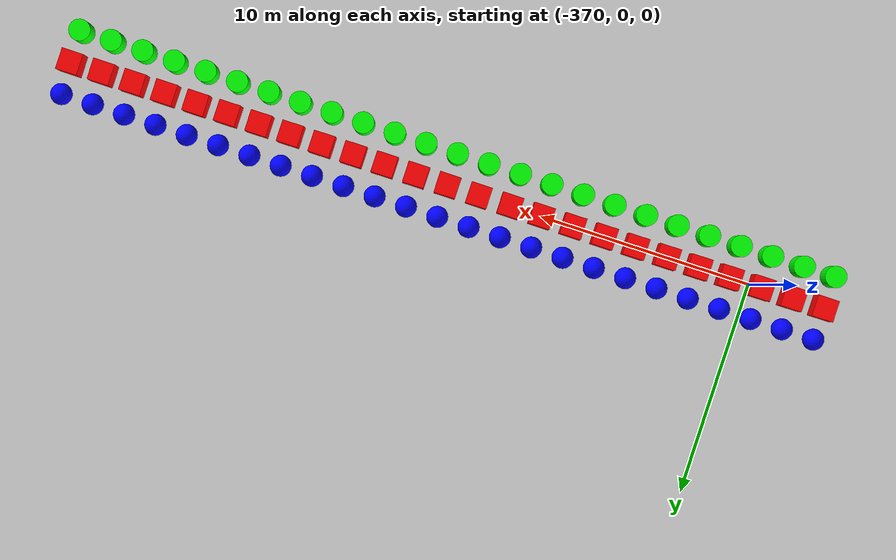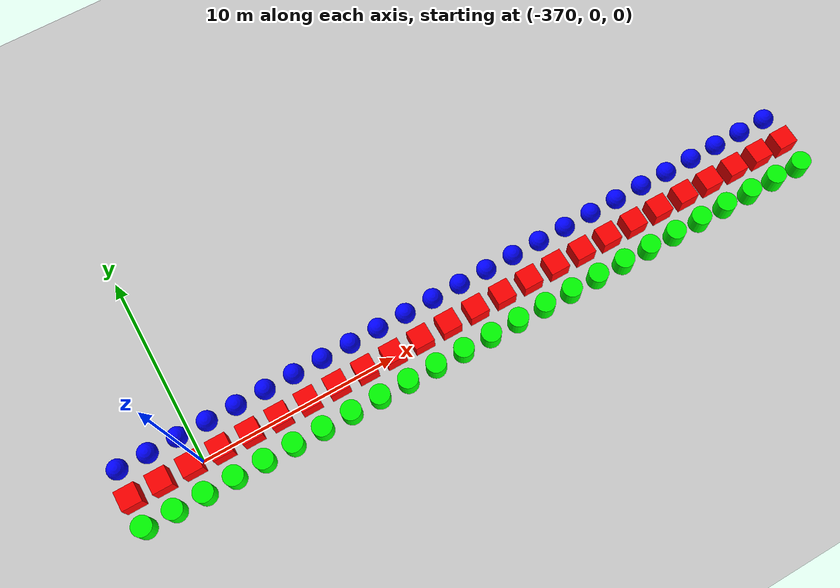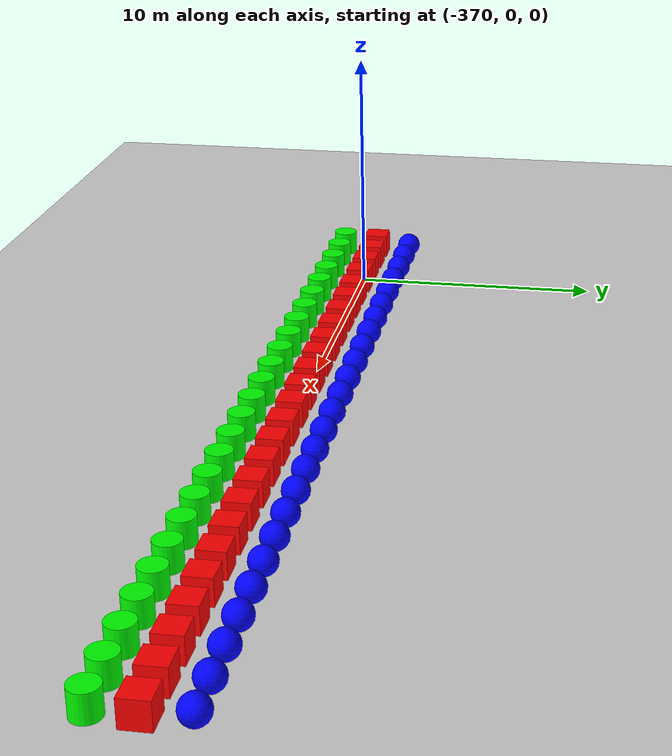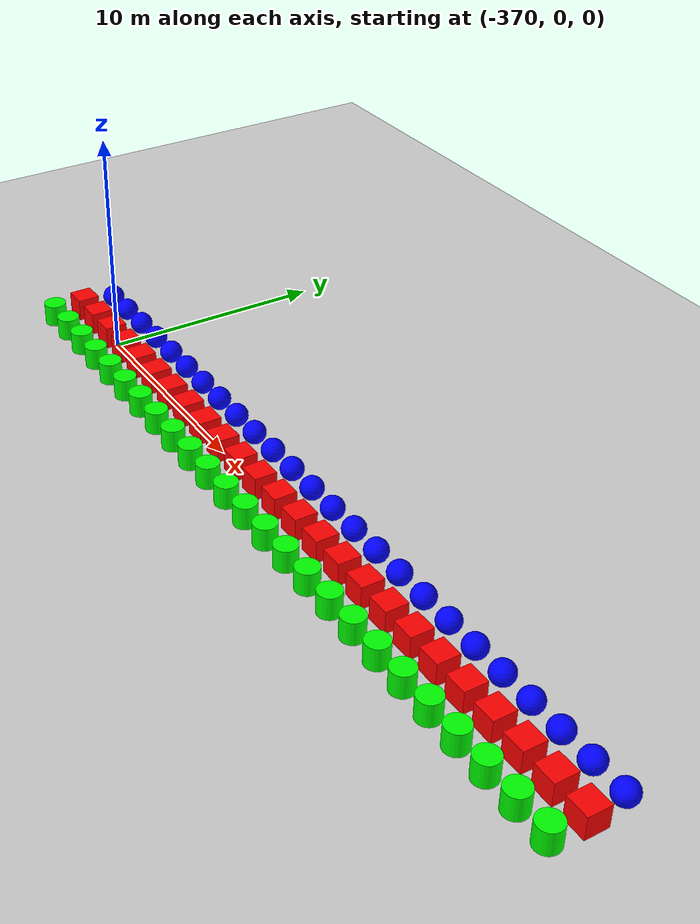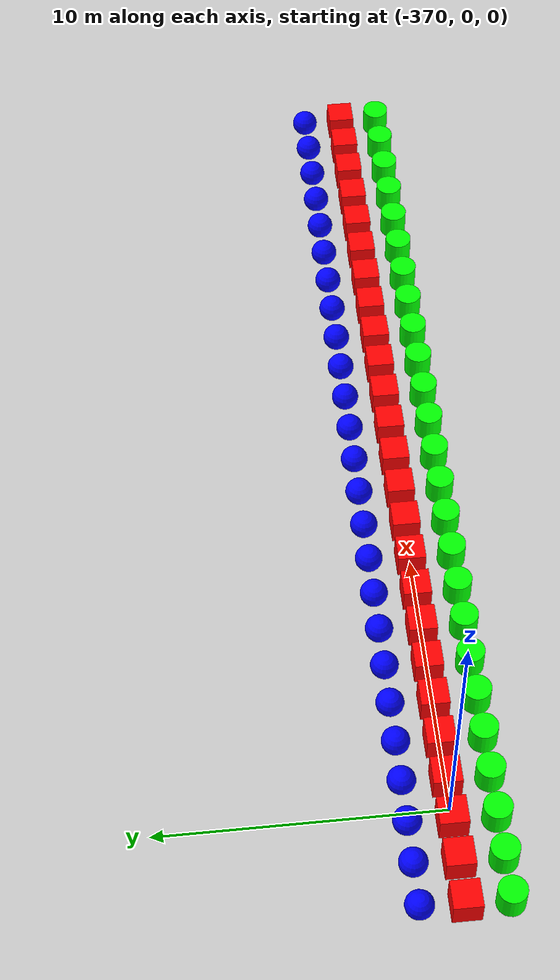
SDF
<sdf version="1.6">
 <world name="shapes">
  <model name="ground_plane">
   <static>true</static>
   <link name="link">
    <collision name="collision">
     <geometry><plane><normal>0 0 1</normal><size>100 100</size></plane></geometry>
    </collision>
    <visual name="visual">
     <geometry><plane><normal>0 0 1</normal><size>100 100</size></plane></geometry>
     <material>
      <ambient>0.8 0.8 0.8 1</ambient>
      <diffuse>0.8 0.8 0.8 1</diffuse>
      <specular>0.8 0.8 0.8 1</specular>
     </material>
    </visual>
   </link>
  </model>
  <model name="box_251">
   <static>false</static>
   <pose>-373.5 0 0.5 0 0 0</pose>
   <link name="box_link">
    <inertial>
     <inertia><ixx>1</ixx><ixy>0</ixy><ixz>0</ixz><iyy>1</iyy><iyz>0</iyz><izz>1</izz></inertia>
     <mass>1.0</mass>
    </inertial>
    <collision name="box_collision"><geometry><box><size>1 1 1</size></box></geometry></collision>
    <visual name="box_visual">
     <geometry><box><size>1 1 1</size></box></geometry>
     <material><ambient>1 0 0 1</ambient><diffuse>1 0 0 1</diffuse><specular>1 0 0 1</specular></material>
    </visual>
   </link>
  </model>
  <model name="cylinder_251">
   <static>false</static>
   <pose>-373.5 -1.5 0.5 0 0 0</pose>
   <link name="cylinder_link">
    <inertial>
     <inertia><ixx>2</ixx><ixy>0</ixy><ixz>0</ixz><iyy>2</iyy><iyz>0</iyz><izz>2</izz></inertia>
     <mass>2.0</mass>
    </inertial>
    <collision name="cylinder_collision">
     <geometry><cylinder><radius>0.5</radius><length>1.0</length></cylinder></geometry>
    </collision>
    <visual name="cylinder_visual">
     <geometry><cylinder><radius>0.5</radius><length>1.0</length></cylinder></geometry>
     <material><ambient>0 1 0 1</ambient><diffuse>0 1 0 1</diffuse><specular>0 1 0 1</specular></material>
    </visual>
   </link>
  </model>
  <model name="sphere_251">
   <static>false</static>
   <pose>-373.5 1.5 0.5 0 0 0</pose>
   <link name="sphere_link">
    <inertial>
     <inertia><ixx>3</ixx><ixy>0</ixy><ixz>0</ixz><iyy>3</iyy><iyz>0</iyz><izz>3</izz></inertia>
     <mass>3.0</mass>
    </inertial>
    <collision name="sphere_collision"><geometry><sphere><radius>0.5</radius></sphere></geometry></collision>
    <visual name="sphere_visual">
     <geometry><sphere><radius>0.5</radius></sphere></geometry>
     <material><ambient>0 0 1 1</ambient><diffuse>0 0 1 1</diffuse><specular>0 0 1 1</specular></material>
    </visual>
   </link>
  </model>
  <model name="box_252">
   <static>false</static>
   <pose>-372.0 0 0.5 0 0 0</pose>
   <link name="box_link">
    <inertial>
     <inertia><ixx>1</ixx><ixy>0</ixy><ixz>0</ixz><iyy>1</iyy><iyz>0</iyz><izz>1</izz></inertia>
     <mass>1.0</mass>
    </inertial>
    <collision name="box_collision"><geometry><box><size>1 1 1</size></box></geometry></collision>
    <visual name="box_visual">
     <geometry><box><size>1 1 1</size></box></geometry>
     <material><ambient>1 0 0 1</ambient><diffuse>1 0 0 1</diffuse><specular>1 0 0 1</specular></material>
    </visual>
   </link>
  </model>
  <model name="cylinder_252">
   <static>false</static>
   <pose>-372.0 -1.5 0.5 0 0 0</pose>
   <link name="cylinder_link">
    <inertial>
     <inertia><ixx>2</ixx><ixy>0</ixy><ixz>0</ixz><iyy>2</iyy><iyz>0</iyz><izz>2</izz></inertia>
     <mass>2.0</mass>
    </inertial>
    <collision name="cylinder_collision">
     <geometry><cylinder><radius>0.5</radius><length>1.0</length></cylinder></geometry>
    </collision>
    <visual name="cylinder_visual">
     <geometry><cylinder><radius>0.5</radius><length>1.0</length></cylinder></geometry>
     <material><ambient>0 1 0 1</ambient><diffuse>0 1 0 1</diffuse><specular>0 1 0 1</specular></material>
    </visual>
   </link>
  </model>
  <model name="sphere_252">
   <static>false</static>
   <pose>-372.0 1.5 0.5 0 0 0</pose>
   <link name="sphere_link">
    <inertial>
     <inertia><ixx>3</ixx><ixy>0</ixy><ixz>0</ixz><iyy>3</iyy><iyz>0</iyz><izz>3</izz></inertia>
     <mass>3.0</mass>
    </inertial>
    <collision name="sphere_collision"><geometry><sphere><radius>0.5</radius></sphere></geometry></collision>
    <visual name="sphere_visual">
     <geometry><sphere><radius>0.5</radius></sphere></geometry>
     <material><ambient>0 0 1 1</ambient><diffuse>0 0 1 1</diffuse><specular>0 0 1 1</specular></material>
    </visual>
   </link>
  </model>
  <model name="box_253">
   <static>false</static>
   <pose>-370.5 0 0.5 0 0 0</pose>
   <link name="box_link">
    <inertial>
     <inertia><ixx>1</ixx><ixy>0</ixy><ixz>0</ixz><iyy>1</iyy><iyz>0</iyz><izz>1</izz></inertia>
     <mass>1.0</mass>
    </inertial>
    <collision name="box_collision"><geometry><box><size>1 1 1</size></box></geometry></collision>
    <visual name="box_visual">
     <geometry><box><size>1 1 1</size></box></geometry>
     <material><ambient>1 0 0 1</ambient><diffuse>1 0 0 1</diffuse><specular>1 0 0 1</specular></material>
    </visual>
   </link>
  </model>
  <model name="cylinder_253">
   <static>false</static>
   <pose>-370.5 -1.5 0.5 0 0 0</pose>
   <link name="cylinder_link">
    <inertial>
     <inertia><ixx>2</ixx><ixy>0</ixy><ixz>0</ixz><iyy>2</iyy><iyz>0</iyz><izz>2</izz></inertia>
     <mass>2.0</mass>
    </inertial>
    <collision name="cylinder_collision">
     <geometry><cylinder><radius>0.5</radius><length>1.0</length></cylinder></geometry>
    </collision>
    <visual name="cylinder_visual">
     <geometry><cylinder><radius>0.5</radius><length>1.0</length></cylinder></geometry>
     <material><ambient>0 1 0 1</ambient><diffuse>0 1 0 1</diffuse><specular>0 1 0 1</specular></material>
    </visual>
   </link>
  </model>
  <model name="sphere_253">
   <static>false</static>
   <pose>-370.5 1.5 0.5 0 0 0</pose>
   <link name="sphere_link">
    <inertial>
     <inertia><ixx>3</ixx><ixy>0</ixy><ixz>0</ixz><iyy>3</iyy><iyz>0</iyz><izz>3</izz></inertia>
     <mass>3.0</mass>
    </inertial>
    <collision name="sphere_collision"><geometry><sphere><radius>0.5</radius></sphere></geometry></collision>
    <visual name="sphere_visual">
     <geometry><sphere><radius>0.5</radius></sphere></geometry>
     <material><ambient>0 0 1 1</ambient><diffuse>0 0 1 1</diffuse><specular>0 0 1 1</specular></material>
    </visual>
   </link>
  </model>
  <model name="box_254">
   <static>false</static>
   <pose>-369.0 0 0.5 0 0 0</pose>
   <link name="box_link">
    <inertial>
     <inertia><ixx>1</ixx><ixy>0</ixy><ixz>0</ixz><iyy>1</iyy><iyz>0</iyz><izz>1</izz></inertia>
     <mass>1.0</mass>
    </inertial>
    <collision name="box_collision"><geometry><box><size>1 1 1</size></box></geometry></collision>
    <visual name="box_visual">
     <geometry><box><size>1 1 1</size></box></geometry>
     <material><ambient>1 0 0 1</ambient><diffuse>1 0 0 1</diffuse><specular>1 0 0 1</specular></material>
    </visual>
   </link>
  </model>
  <model name="cylinder_254">
   <static>false</static>
   <pose>-369.0 -1.5 0.5 0 0 0</pose>
   <link name="cylinder_link">
    <inertial>
     <inertia><ixx>2</ixx><ixy>0</ixy><ixz>0</ixz><iyy>2</iyy><iyz>0</iyz><izz>2</izz></inertia>
     <mass>2.0</mass>
    </inertial>
    <collision name="cylinder_collision">
     <geometry><cylinder><radius>0.5</radius><length>1.0</length></cylinder></geometry>
    </collision>
    <visual name="cylinder_visual">
     <geometry><cylinder><radius>0.5</radius><length>1.0</length></cylinder></geometry>
     <material><ambient>0 1 0 1</ambient><diffuse>0 1 0 1</diffuse><specular>0 1 0 1</specular></material>
    </visual>
   </link>
  </model>
  <model name="sphere_254">
   <static>false</static>
   <pose>-369.0 1.5 0.5 0 0 0</pose>
   <link name="sphere_link">
    <inertial>
     <inertia><ixx>3</ixx><ixy>0</ixy><ixz>0</ixz><iyy>3</iyy><iyz>0</iyz><izz>3</izz></inertia>
     <mass>3.0</mass>
    </inertial>
    <collision name="sphere_collision"><geometry><sphere><radius>0.5</radius></sphere></geometry></collision>
    <visual name="sphere_visual">
     <geometry><sphere><radius>0.5</radius></sphere></geometry>
     <material><ambient>0 0 1 1</ambient><diffuse>0 0 1 1</diffuse><specular>0 0 1 1</specular></material>
    </visual>
   </link>
  </model>
  <model name="box_255">
   <static>false</static>
   <pose>-367.5 0 0.5 0 0 0</pose>
   <link name="box_link">
    <inertial>
     <inertia><ixx>1</ixx><ixy>0</ixy><ixz>0</ixz><iyy>1</iyy><iyz>0</iyz><izz>1</izz></inertia>
     <mass>1.0</mass>
    </inertial>
    <collision name="box_collision"><geometry><box><size>1 1 1</size></box></geometry></collision>
    <visual name="box_visual">
     <geometry><box><size>1 1 1</size></box></geometry>
     <material><ambient>1 0 0 1</ambient><diffuse>1 0 0 1</diffuse><specular>1 0 0 1</specular></material>
    </visual>
   </link>
  </model>
  <model name="cylinder_255">
   <static>false</static>
   <pose>-367.5 -1.5 0.5 0 0 0</pose>
   <link name="cylinder_link">
    <inertial>
     <inertia><ixx>2</ixx><ixy>0</ixy><ixz>0</ixz><iyy>2</iyy><iyz>0</iyz><izz>2</izz></inertia>
     <mass>2.0</mass>
    </inertial>
    <collision name="cylinder_collision">
     <geometry><cylinder><radius>0.5</radius><length>1.0</length></cylinder></geometry>
    </collision>
    <visual name="cylinder_visual">
     <geometry><cylinder><radius>0.5</radius><length>1.0</length></cylinder></geometry>
     <material><ambient>0 1 0 1</ambient><diffuse>0 1 0 1</diffuse><specular>0 1 0 1</specular></material>
    </visual>
   </link>
  </model>
  <model name="sphere_255">
   <static>false</static>
   <pose>-367.5 1.5 0.5 0 0 0</pose>
   <link name="sphere_link">
    <inertial>
     <inertia><ixx>3</ixx><ixy>0</ixy><ixz>0</ixz><iyy>3</iyy><iyz>0</iyz><izz>3</izz></inertia>
     <mass>3.0</mass>
    </inertial>
    <collision name="sphere_collision"><geometry><sphere><radius>0.5</radius></sphere></geometry></collision>
    <visual name="sphere_visual">
     <geometry><sphere><radius>0.5</radius></sphere></geometry>
     <material><ambient>0 0 1 1</ambient><diffuse>0 0 1 1</diffuse><specular>0 0 1 1</specular></material>
    </visual>
   </link>
  </model>
  <model name="box_256">
   <static>false</static>
   <pose>-366.0 0 0.5 0 0 0</pose>
   <link name="box_link">
    <inertial>
     <inertia><ixx>1</ixx><ixy>0</ixy><ixz>0</ixz><iyy>1</iyy><iyz>0</iyz><izz>1</izz></inertia>
     <mass>1.0</mass>
    </inertial>
    <collision name="box_collision"><geometry><box><size>1 1 1</size></box></geometry></collision>
    <visual name="box_visual">
     <geometry><box><size>1 1 1</size></box></geometry>
     <material><ambient>1 0 0 1</ambient><diffuse>1 0 0 1</diffuse><specular>1 0 0 1</specular></material>
    </visual>
   </link>
  </model>
  <model name="cylinder_256">
   <static>false</static>
   <pose>-366.0 -1.5 0.5 0 0 0</pose>
   <link name="cylinder_link">
    <inertial>
     <inertia><ixx>2</ixx><ixy>0</ixy><ixz>0</ixz><iyy>2</iyy><iyz>0</iyz><izz>2</izz></inertia>
     <mass>2.0</mass>
    </inertial>
    <collision name="cylinder_collision">
     <geometry><cylinder><radius>0.5</radius><length>1.0</length></cylinder></geometry>
    </collision>
    <visual name="cylinder_visual">
     <geometry><cylinder><radius>0.5</radius><length>1.0</length></cylinder></geometry>
     <material><ambient>0 1 0 1</ambient><diffuse>0 1 0 1</diffuse><specular>0 1 0 1</specular></material>
    </visual>
   </link>
  </model>
  <model name="sphere_256">
   <static>false</static>
   <pose>-366.0 1.5 0.5 0 0 0</pose>
   <link name="sphere_link">
    <inertial>
     <inertia><ixx>3</ixx><ixy>0</ixy><ixz>0</ixz><iyy>3</iyy><iyz>0</iyz><izz>3</izz></inertia>
     <mass>3.0</mass>
    </inertial>
    <collision name="sphere_collision"><geometry><sphere><radius>0.5</radius></sphere></geometry></collision>
    <visual name="sphere_visual">
     <geometry><sphere><radius>0.5</radius></sphere></geometry>
     <material><ambient>0 0 1 1</ambient><diffuse>0 0 1 1</diffuse><specular>0 0 1 1</specular></material>
    </visual>
   </link>
  </model>
  <model name="box_257">
   <static>false</static>
   <pose>-364.5 0 0.5 0 0 0</pose>
   <link name="box_link">
    <inertial>
     <inertia><ixx>1</ixx><ixy>0</ixy><ixz>0</ixz><iyy>1</iyy><iyz>0</iyz><izz>1</izz></inertia>
     <mass>1.0</mass>
    </inertial>
    <collision name="box_collision"><geometry><box><size>1 1 1</size></box></geometry></collision>
    <visual name="box_visual">
     <geometry><box><size>1 1 1</size></box></geometry>
     <material><ambient>1 0 0 1</ambient><diffuse>1 0 0 1</diffuse><specular>1 0 0 1</specular></material>
    </visual>
   </link>
  </model>
  <model name="cylinder_257">
   <static>false</static>
   <pose>-364.5 -1.5 0.5 0 0 0</pose>
   <link name="cylinder_link">
    <inertial>
     <inertia><ixx>2</ixx><ixy>0</ixy><ixz>0</ixz><iyy>2</iyy><iyz>0</iyz><izz>2</izz></inertia>
     <mass>2.0</mass>
    </inertial>
    <collision name="cylinder_collision">
     <geometry><cylinder><radius>0.5</radius><length>1.0</length></cylinder></geometry>
    </collision>
    <visual name="cylinder_visual">
     <geometry><cylinder><radius>0.5</radius><length>1.0</length></cylinder></geometry>
     <material><ambient>0 1 0 1</ambient><diffuse>0 1 0 1</diffuse><specular>0 1 0 1</specular></material>
    </visual>
   </link>
  </model>
  <model name="sphere_257">
   <static>false</static>
   <pose>-364.5 1.5 0.5 0 0 0</pose>
   <link name="sphere_link">
    <inertial>
     <inertia><ixx>3</ixx><ixy>0</ixy><ixz>0</ixz><iyy>3</iyy><iyz>0</iyz><izz>3</izz></inertia>
     <mass>3.0</mass>
    </inertial>
    <collision name="sphere_collision"><geometry><sphere><radius>0.5</radius></sphere></geometry></collision>
    <visual name="sphere_visual">
     <geometry><sphere><radius>0.5</radius></sphere></geometry>
     <material><ambient>0 0 1 1</ambient><diffuse>0 0 1 1</diffuse><specular>0 0 1 1</specular></material>
    </visual>
   </link>
  </model>
  <model name="box_258">
   <static>false</static>
   <pose>-363.0 0 0.5 0 0 0</pose>
   <link name="box_link">
    <inertial>
     <inertia><ixx>1</ixx><ixy>0</ixy><ixz>0</ixz><iyy>1</iyy><iyz>0</iyz><izz>1</izz></inertia>
     <mass>1.0</mass>
    </inertial>
    <collision name="box_collision"><geometry><box><size>1 1 1</size></box></geometry></collision>
    <visual name="box_visual">
     <geometry><box><size>1 1 1</size></box></geometry>
     <material><ambient>1 0 0 1</ambient><diffuse>1 0 0 1</diffuse><specular>1 0 0 1</specular></material>
    </visual>
   </link>
  </model>
  <model name="cylinder_258">
   <static>false</static>
   <pose>-363.0 -1.5 0.5 0 0 0</pose>
   <link name="cylinder_link">
    <inertial>
     <inertia><ixx>2</ixx><ixy>0</ixy><ixz>0</ixz><iyy>2</iyy><iyz>0</iyz><izz>2</izz></inertia>
     <mass>2.0</mass>
    </inertial>
    <collision name="cylinder_collision">
     <geometry><cylinder><radius>0.5</radius><length>1.0</length></cylinder></geometry>
    </collision>
    <visual name="cylinder_visual">
     <geometry><cylinder><radius>0.5</radius><length>1.0</length></cylinder></geometry>
     <material><ambient>0 1 0 1</ambient><diffuse>0 1 0 1</diffuse><specular>0 1 0 1</specular></material>
    </visual>
   </link>
  </model>
  <model name="sphere_258">
   <static>false</static>
   <pose>-363.0 1.5 0.5 0 0 0</pose>
   <link name="sphere_link">
    <inertial>
     <inertia><ixx>3</ixx><ixy>0</ixy><ixz>0</ixz><iyy>3</iyy><iyz>0</iyz><izz>3</izz></inertia>
     <mass>3.0</mass>
    </inertial>
    <collision name="sphere_collision"><geometry><sphere><radius>0.5</radius></sphere></geometry></collision>
    <visual name="sphere_visual">
     <geometry><sphere><radius>0.5</radius></sphere></geometry>
     <material><ambient>0 0 1 1</ambient><diffuse>0 0 1 1</diffuse><specular>0 0 1 1</specular></material>
    </visual>
   </link>
  </model>
  <model name="box_259">
   <static>false</static>
   <pose>-361.5 0 0.5 0 0 0</pose>
   <link name="box_link">
    <inertial>
     <inertia><ixx>1</ixx><ixy>0</ixy><ixz>0</ixz><iyy>1</iyy><iyz>0</iyz><izz>1</izz></inertia>
     <mass>1.0</mass>
    </inertial>
    <collision name="box_collision"><geometry><box><size>1 1 1</size></box></geometry></collision>
    <visual name="box_visual">
     <geometry><box><size>1 1 1</size></box></geometry>
     <material><ambient>1 0 0 1</ambient><diffuse>1 0 0 1</diffuse><specular>1 0 0 1</specular></material>
    </visual>
   </link>
  </model>
  <model name="cylinder_259">
   <static>false</static>
   <pose>-361.5 -1.5 0.5 0 0 0</pose>
   <link name="cylinder_link">
    <inertial>
     <inertia><ixx>2</ixx><ixy>0</ixy><ixz>0</ixz><iyy>2</iyy><iyz>0</iyz><izz>2</izz></inertia>
     <mass>2.0</mass>
    </inertial>
    <collision name="cylinder_collision">
     <geometry><cylinder><radius>0.5</radius><length>1.0</length></cylinder></geometry>
    </collision>
    <visual name="cylinder_visual">
     <geometry><cylinder><radius>0.5</radius><length>1.0</length></cylinder></geometry>
     <material><ambient>0 1 0 1</ambient><diffuse>0 1 0 1</diffuse><specular>0 1 0 1</specular></material>
    </visual>
   </link>
  </model>
  <model name="sphere_259">
   <static>false</static>
   <pose>-361.5 1.5 0.5 0 0 0</pose>
   <link name="sphere_link">
    <inertial>
     <inertia><ixx>3</ixx><ixy>0</ixy><ixz>0</ixz><iyy>3</iyy><iyz>0</iyz><izz>3</izz></inertia>
     <mass>3.0</mass>
    </inertial>
    <collision name="sphere_collision"><geometry><sphere><radius>0.5</radius></sphere></geometry></collision>
    <visual name="sphere_visual">
     <geometry><sphere><radius>0.5</radius></sphere></geometry>
     <material><ambient>0 0 1 1</ambient><diffuse>0 0 1 1</diffuse><specular>0 0 1 1</specular></material>
    </visual>
   </link>
  </model>
  <model name="box_260">
   <static>false</static>
   <pose>-360.0 0 0.5 0 0 0</pose>
   <link name="box_link">
    <inertial>
     <inertia><ixx>1</ixx><ixy>0</ixy><ixz>0</ixz><iyy>1</iyy><iyz>0</iyz><izz>1</izz></inertia>
     <mass>1.0</mass>
    </inertial>
    <collision name="box_collision"><geometry><box><size>1 1 1</size></box></geometry></collision>
    <visual name="box_visual">
     <geometry><box><size>1 1 1</size></box></geometry>
     <material><ambient>1 0 0 1</ambient><diffuse>1 0 0 1</diffuse><specular>1 0 0 1</specular></material>
    </visual>
   </link>
  </model>
  <model name="cylinder_260">
   <static>false</static>
   <pose>-360.0 -1.5 0.5 0 0 0</pose>
   <link name="cylinder_link">
    <inertial>
     <inertia><ixx>2</ixx><ixy>0</ixy><ixz>0</ixz><iyy>2</iyy><iyz>0</iyz><izz>2</izz></inertia>
     <mass>2.0</mass>
    </inertial>
    <collision name="cylinder_collision">
     <geometry><cylinder><radius>0.5</radius><length>1.0</length></cylinder></geometry>
    </collision>
    <visual name="cylinder_visual">
     <geometry><cylinder><radius>0.5</radius><length>1.0</length></cylinder></geometry>
     <material><ambient>0 1 0 1</ambient><diffuse>0 1 0 1</diffuse><specular>0 1 0 1</specular></material>
    </visual>
   </link>
  </model>
  <model name="sphere_260">
   <static>false</static>
   <pose>-360.0 1.5 0.5 0 0 0</pose>
   <link name="sphere_link">
    <inertial>
     <inertia><ixx>3</ixx><ixy>0</ixy><ixz>0</ixz><iyy>3</iyy><iyz>0</iyz><izz>3</izz></inertia>
     <mass>3.0</mass>
    </inertial>
    <collision name="sphere_collision"><geometry><sphere><radius>0.5</radius></sphere></geometry></collision>
    <visual name="sphere_visual">
     <geometry><sphere><radius>0.5</radius></sphere></geometry>
     <material><ambient>0 0 1 1</ambient><diffuse>0 0 1 1</diffuse><specular>0 0 1 1</specular></material>
    </visual>
   </link>
  </model>
  <model name="box_261">
   <static>false</static>
   <pose>-358.5 0 0.5 0 0 0</pose>
   <link name="box_link">
    <inertial>
     <inertia><ixx>1</ixx><ixy>0</ixy><ixz>0</ixz><iyy>1</iyy><iyz>0</iyz><izz>1</izz></inertia>
     <mass>1.0</mass>
    </inertial>
    <collision name="box_collision"><geometry><box><size>1 1 1</size></box></geometry></collision>
    <visual name="box_visual">
     <geometry><box><size>1 1 1</size></box></geometry>
     <material><ambient>1 0 0 1</ambient><diffuse>1 0 0 1</diffuse><specular>1 0 0 1</specular></material>
    </visual>
   </link>
  </model>
  <model name="cylinder_261">
   <static>false</static>
   <pose>-358.5 -1.5 0.5 0 0 0</pose>
   <link name="cylinder_link">
    <inertial>
     <inertia><ixx>2</ixx><ixy>0</ixy><ixz>0</ixz><iyy>2</iyy><iyz>0</iyz><izz>2</izz></inertia>
     <mass>2.0</mass>
    </inertial>
    <collision name="cylinder_collision">
     <geometry><cylinder><radius>0.5</radius><length>1.0</length></cylinder></geometry>
    </collision>
    <visual name="cylinder_visual">
     <geometry><cylinder><radius>0.5</radius><length>1.0</length></cylinder></geometry>
     <material><ambient>0 1 0 1</ambient><diffuse>0 1 0 1</diffuse><specular>0 1 0 1</specular></material>
    </visual>
   </link>
  </model>
  <model name="sphere_261">
   <static>false</static>
   <pose>-358.5 1.5 0.5 0 0 0</pose>
   <link name="sphere_link">
    <inertial>
     <inertia><ixx>3</ixx><ixy>0</ixy><ixz>0</ixz><iyy>3</iyy><iyz>0</iyz><izz>3</izz></inertia>
     <mass>3.0</mass>
    </inertial>
    <collision name="sphere_collision"><geometry><sphere><radius>0.5</radius></sphere></geometry></collision>
    <visual name="sphere_visual">
     <geometry><sphere><radius>0.5</radius></sphere></geometry>
     <material><ambient>0 0 1 1</ambient><diffuse>0 0 1 1</diffuse><specular>0 0 1 1</specular></material>
    </visual>
   </link>
  </model>
  <model name="box_262">
   <static>false</static>
   <pose>-357.0 0 0.5 0 0 0</pose>
   <link name="box_link">
    <inertial>
     <inertia><ixx>1</ixx><ixy>0</ixy><ixz>0</ixz><iyy>1</iyy><iyz>0</iyz><izz>1</izz></inertia>
     <mass>1.0</mass>
    </inertial>
    <collision name="box_collision"><geometry><box><size>1 1 1</size></box></geometry></collision>
    <visual name="box_visual">
     <geometry><box><size>1 1 1</size></box></geometry>
     <material><ambient>1 0 0 1</ambient><diffuse>1 0 0 1</diffuse><specular>1 0 0 1</specular></material>
    </visual>
   </link>
  </model>
  <model name="cylinder_262">
   <static>false</static>
   <pose>-357.0 -1.5 0.5 0 0 0</pose>
   <link name="cylinder_link">
    <inertial>
     <inertia><ixx>2</ixx><ixy>0</ixy><ixz>0</ixz><iyy>2</iyy><iyz>0</iyz><izz>2</izz></inertia>
     <mass>2.0</mass>
    </inertial>
    <collision name="cylinder_collision">
     <geometry><cylinder><radius>0.5</radius><length>1.0</length></cylinder></geometry>
    </collision>
    <visual name="cylinder_visual">
     <geometry><cylinder><radius>0.5</radius><length>1.0</length></cylinder></geometry>
     <material><ambient>0 1 0 1</ambient><diffuse>0 1 0 1</diffuse><specular>0 1 0 1</specular></material>
    </visual>
   </link>
  </model>
  <model name="sphere_262">
   <static>false</static>
   <pose>-357.0 1.5 0.5 0 0 0</pose>
   <link name="sphere_link">
    <inertial>
     <inertia><ixx>3</ixx><ixy>0</ixy><ixz>0</ixz><iyy>3</iyy><iyz>0</iyz><izz>3</izz></inertia>
     <mass>3.0</mass>
    </inertial>
    <collision name="sphere_collision"><geometry><sphere><radius>0.5</radius></sphere></geometry></collision>
    <visual name="sphere_visual">
     <geometry><sphere><radius>0.5</radius></sphere></geometry>
     <material><ambient>0 0 1 1</ambient><diffuse>0 0 1 1</diffuse><specular>0 0 1 1</specular></material>
    </visual>
   </link>
  </model>
  <model name="box_263">
   <static>false</static>
   <pose>-355.5 0 0.5 0 0 0</pose>
   <link name="box_link">
    <inertial>
     <inertia><ixx>1</ixx><ixy>0</ixy><ixz>0</ixz><iyy>1</iyy><iyz>0</iyz><izz>1</izz></inertia>
     <mass>1.0</mass>
    </inertial>
    <collision name="box_collision"><geometry><box><size>1 1 1</size></box></geometry></collision>
    <visual name="box_visual">
     <geometry><box><size>1 1 1</size></box></geometry>
     <material><ambient>1 0 0 1</ambient><diffuse>1 0 0 1</diffuse><specular>1 0 0 1</specular></material>
    </visual>
   </link>
  </model>
  <model name="cylinder_263">
   <static>false</static>
   <pose>-355.5 -1.5 0.5 0 0 0</pose>
   <link name="cylinder_link">
    <inertial>
     <inertia><ixx>2</ixx><ixy>0</ixy><ixz>0</ixz><iyy>2</iyy><iyz>0</iyz><izz>2</izz></inertia>
     <mass>2.0</mass>
    </inertial>
    <collision name="cylinder_collision">
     <geometry><cylinder><radius>0.5</radius><length>1.0</length></cylinder></geometry>
    </collision>
    <visual name="cylinder_visual">
     <geometry><cylinder><radius>0.5</radius><length>1.0</length></cylinder></geometry>
     <material><ambient>0 1 0 1</ambient><diffuse>0 1 0 1</diffuse><specular>0 1 0 1</specular></material>
    </visual>
   </link>
  </model>
  <model name="sphere_263">
   <static>false</static>
   <pose>-355.5 1.5 0.5 0 0 0</pose>
   <link name="sphere_link">
    <inertial>
     <inertia><ixx>3</ixx><ixy>0</ixy><ixz>0</ixz><iyy>3</iyy><iyz>0</iyz><izz>3</izz></inertia>
     <mass>3.0</mass>
    </inertial>
    <collision name="sphere_collision"><geometry><sphere><radius>0.5</radius></sphere></geometry></collision>
    <visual name="sphere_visual">
     <geometry><sphere><radius>0.5</radius></sphere></geometry>
     <material><ambient>0 0 1 1</ambient><diffuse>0 0 1 1</diffuse><specular>0 0 1 1</specular></material>
    </visual>
   </link>
  </model>
  <model name="box_264">
   <static>false</static>
   <pose>-354.0 0 0.5 0 0 0</pose>
   <link name="box_link">
    <inertial>
     <inertia><ixx>1</ixx><ixy>0</ixy><ixz>0</ixz><iyy>1</iyy><iyz>0</iyz><izz>1</izz></inertia>
     <mass>1.0</mass>
    </inertial>
    <collision name="box_collision"><geometry><box><size>1 1 1</size></box></geometry></collision>
    <visual name="box_visual">
     <geometry><box><size>1 1 1</size></box></geometry>
     <material><ambient>1 0 0 1</ambient><diffuse>1 0 0 1</diffuse><specular>1 0 0 1</specular></material>
    </visual>
   </link>
  </model>
  <model name="cylinder_264">
   <static>false</static>
   <pose>-354.0 -1.5 0.5 0 0 0</pose>
   <link name="cylinder_link">
    <inertial>
     <inertia><ixx>2</ixx><ixy>0</ixy><ixz>0</ixz><iyy>2</iyy><iyz>0</iyz><izz>2</izz></inertia>
     <mass>2.0</mass>
    </inertial>
    <collision name="cylinder_collision">
     <geometry><cylinder><radius>0.5</radius><length>1.0</length></cylinder></geometry>
    </collision>
    <visual name="cylinder_visual">
     <geometry><cylinder><radius>0.5</radius><length>1.0</length></cylinder></geometry>
     <material><ambient>0 1 0 1</ambient><diffuse>0 1 0 1</diffuse><specular>0 1 0 1</specular></material>
    </visual>
   </link>
  </model>
  <model name="sphere_264">
   <static>false</static>
   <pose>-354.0 1.5 0.5 0 0 0</pose>
   <link name="sphere_link">
    <inertial>
     <inertia><ixx>3</ixx><ixy>0</ixy><ixz>0</ixz><iyy>3</iyy><iyz>0</iyz><izz>3</izz></inertia>
     <mass>3.0</mass>
    </inertial>
    <collision name="sphere_collision"><geometry><sphere><radius>0.5</radius></sphere></geometry></collision>
    <visual name="sphere_visual">
     <geometry><sphere><radius>0.5</radius></sphere></geometry>
     <material><ambient>0 0 1 1</ambient><diffuse>0 0 1 1</diffuse><specular>0 0 1 1</specular></material>
    </visual>
   </link>
  </model>
  <model name="box_265">
   <static>false</static>
   <pose>-352.5 0 0.5 0 0 0</pose>
   <link name="box_link">
    <inertial>
     <inertia><ixx>1</ixx><ixy>0</ixy><ixz>0</ixz><iyy>1</iyy><iyz>0</iyz><izz>1</izz></inertia>
     <mass>1.0</mass>
    </inertial>
    <collision name="box_collision"><geometry><box><size>1 1 1</size></box></geometry></collision>
    <visual name="box_visual">
     <geometry><box><size>1 1 1</size></box></geometry>
     <material><ambient>1 0 0 1</ambient><diffuse>1 0 0 1</diffuse><specular>1 0 0 1</specular></material>
    </visual>
   </link>
  </model>
  <model name="cylinder_265">
   <static>false</static>
   <pose>-352.5 -1.5 0.5 0 0 0</pose>
   <link name="cylinder_link">
    <inertial>
     <inertia><ixx>2</ixx><ixy>0</ixy><ixz>0</ixz><iyy>2</iyy><iyz>0</iyz><izz>2</izz></inertia>
     <mass>2.0</mass>
    </inertial>
    <collision name="cylinder_collision">
     <geometry><cylinder><radius>0.5</radius><length>1.0</length></cylinder></geometry>
    </collision>
    <visual name="cylinder_visual">
     <geometry><cylinder><radius>0.5</radius><length>1.0</length></cylinder></geometry>
     <material><ambient>0 1 0 1</ambient><diffuse>0 1 0 1</diffuse><specular>0 1 0 1</specular></material>
    </visual>
   </link>
  </model>
  <model name="sphere_265">
   <static>false</static>
   <pose>-352.5 1.5 0.5 0 0 0</pose>
   <link name="sphere_link">
    <inertial>
     <inertia><ixx>3</ixx><ixy>0</ixy><ixz>0</ixz><iyy>3</iyy><iyz>0</iyz><izz>3</izz></inertia>
     <mass>3.0</mass>
    </inertial>
    <collision name="sphere_collision"><geometry><sphere><radius>0.5</radius></sphere></geometry></collision>
    <visual name="sphere_visual">
     <geometry><sphere><radius>0.5</radius></sphere></geometry>
     <material><ambient>0 0 1 1</ambient><diffuse>0 0 1 1</diffuse><specular>0 0 1 1</specular></material>
    </visual>
   </link>
  </model>
  <model name="box_266">
   <static>false</static>
   <pose>-351.0 0 0.5 0 0 0</pose>
   <link name="box_link">
    <inertial>
     <inertia><ixx>1</ixx><ixy>0</ixy><ixz>0</ixz><iyy>1</iyy><iyz>0</iyz><izz>1</izz></inertia>
     <mass>1.0</mass>
    </inertial>
    <collision name="box_collision"><geometry><box><size>1 1 1</size></box></geometry></collision>
    <visual name="box_visual">
     <geometry><box><size>1 1 1</size></box></geometry>
     <material><ambient>1 0 0 1</ambient><diffuse>1 0 0 1</diffuse><specular>1 0 0 1</specular></material>
    </visual>
   </link>
  </model>
  <model name="cylinder_266">
   <static>false</static>
   <pose>-351.0 -1.5 0.5 0 0 0</pose>
   <link name="cylinder_link">
    <inertial>
     <inertia><ixx>2</ixx><ixy>0</ixy><ixz>0</ixz><iyy>2</iyy><iyz>0</iyz><izz>2</izz></inertia>
     <mass>2.0</mass>
    </inertial>
    <collision name="cylinder_collision">
     <geometry><cylinder><radius>0.5</radius><length>1.0</length></cylinder></geometry>
    </collision>
    <visual name="cylinder_visual">
     <geometry><cylinder><radius>0.5</radius><length>1.0</length></cylinder></geometry>
     <material><ambient>0 1 0 1</ambient><diffuse>0 1 0 1</diffuse><specular>0 1 0 1</specular></material>
    </visual>
   </link>
  </model>
  <model name="sphere_266">
   <static>false</static>
   <pose>-351.0 1.5 0.5 0 0 0</pose>
   <link name="sphere_link">
    <inertial>
     <inertia><ixx>3</ixx><ixy>0</ixy><ixz>0</ixz><iyy>3</iyy><iyz>0</iyz><izz>3</izz></inertia>
     <mass>3.0</mass>
    </inertial>
    <collision name="sphere_collision"><geometry><sphere><radius>0.5</radius></sphere></geometry></collision>
    <visual name="sphere_visual">
     <geometry><sphere><radius>0.5</radius></sphere></geometry>
     <material><ambient>0 0 1 1</ambient><diffuse>0 0 1 1</diffuse><specular>0 0 1 1</specular></material>
    </visual>
   </link>
  </model>
  <model name="box_267">
   <static>false</static>
   <pose>-349.5 0 0.5 0 0 0</pose>
   <link name="box_link">
    <inertial>
     <inertia><ixx>1</ixx><ixy>0</ixy><ixz>0</ixz><iyy>1</iyy><iyz>0</iyz><izz>1</izz></inertia>
     <mass>1.0</mass>
    </inertial>
    <collision name="box_collision"><geometry><box><size>1 1 1</size></box></geometry></collision>
    <visual name="box_visual">
     <geometry><box><size>1 1 1</size></box></geometry>
     <material><ambient>1 0 0 1</ambient><diffuse>1 0 0 1</diffuse><specular>1 0 0 1</specular></material>
    </visual>
   </link>
  </model>
  <model name="cylinder_267">
   <static>false</static>
   <pose>-349.5 -1.5 0.5 0 0 0</pose>
   <link name="cylinder_link">
    <inertial>
     <inertia><ixx>2</ixx><ixy>0</ixy><ixz>0</ixz><iyy>2</iyy><iyz>0</iyz><izz>2</izz></inertia>
     <mass>2.0</mass>
    </inertial>
    <collision name="cylinder_collision">
     <geometry><cylinder><radius>0.5</radius><length>1.0</length></cylinder></geometry>
    </collision>
    <visual name="cylinder_visual">
     <geometry><cylinder><radius>0.5</radius><length>1.0</length></cylinder></geometry>
     <material><ambient>0 1 0 1</ambient><diffuse>0 1 0 1</diffuse><specular>0 1 0 1</specular></material>
    </visual>
   </link>
  </model>
  <model name="sphere_267">
   <static>false</static>
   <pose>-349.5 1.5 0.5 0 0 0</pose>
   <link name="sphere_link">
    <inertial>
     <inertia><ixx>3</ixx><ixy>0</ixy><ixz>0</ixz><iyy>3</iyy><iyz>0</iyz><izz>3</izz></inertia>
     <mass>3.0</mass>
    </inertial>
    <collision name="sphere_collision"><geometry><sphere><radius>0.5</radius></sphere></geometry></collision>
    <visual name="sphere_visual">
     <geometry><sphere><radius>0.5</radius></sphere></geometry>
     <material><ambient>0 0 1 1</ambient><diffuse>0 0 1 1</diffuse><specular>0 0 1 1</specular></material>
    </visual>
   </link>
  </model>
  <model name="box_268">
   <static>false</static>
   <pose>-348.0 0 0.5 0 0 0</pose>
   <link name="box_link">
    <inertial>
     <inertia><ixx>1</ixx><ixy>0</ixy><ixz>0</ixz><iyy>1</iyy><iyz>0</iyz><izz>1</izz></inertia>
     <mass>1.0</mass>
    </inertial>
    <collision name="box_collision"><geometry><box><size>1 1 1</size></box></geometry></collision>
    <visual name="box_visual">
     <geometry><box><size>1 1 1</size></box></geometry>
     <material><ambient>1 0 0 1</ambient><diffuse>1 0 0 1</diffuse><specular>1 0 0 1</specular></material>
    </visual>
   </link>
  </model>
  <model name="cylinder_268">
   <static>false</static>
   <pose>-348.0 -1.5 0.5 0 0 0</pose>
   <link name="cylinder_link">
    <inertial>
     <inertia><ixx>2</ixx><ixy>0</ixy><ixz>0</ixz><iyy>2</iyy><iyz>0</iyz><izz>2</izz></inertia>
     <mass>2.0</mass>
    </inertial>
    <collision name="cylinder_collision">
     <geometry><cylinder><radius>0.5</radius><length>1.0</length></cylinder></geometry>
    </collision>
    <visual name="cylinder_visual">
     <geometry><cylinder><radius>0.5</radius><length>1.0</length></cylinder></geometry>
     <material><ambient>0 1 0 1</ambient><diffuse>0 1 0 1</diffuse><specular>0 1 0 1</specular></material>
    </visual>
   </link>
  </model>
  <model name="sphere_268">
   <static>false</static>
   <pose>-348.0 1.5 0.5 0 0 0</pose>
   <link name="sphere_link">
    <inertial>
     <inertia><ixx>3</ixx><ixy>0</ixy><ixz>0</ixz><iyy>3</iyy><iyz>0</iyz><izz>3</izz></inertia>
     <mass>3.0</mass>
    </inertial>
    <collision name="sphere_collision"><geometry><sphere><radius>0.5</radius></sphere></geometry></collision>
    <visual name="sphere_visual">
     <geometry><sphere><radius>0.5</radius></sphere></geometry>
     <material><ambient>0 0 1 1</ambient><diffuse>0 0 1 1</diffuse><specular>0 0 1 1</specular></material>
    </visual>
   </link>
  </model>
  <model name="box_269">
   <static>false</static>
   <pose>-346.5 0 0.5 0 0 0</pose>
   <link name="box_link">
    <inertial>
     <inertia><ixx>1</ixx><ixy>0</ixy><ixz>0</ixz><iyy>1</iyy><iyz>0</iyz><izz>1</izz></inertia>
     <mass>1.0</mass>
    </inertial>
    <collision name="box_collision"><geometry><box><size>1 1 1</size></box></geometry></collision>
    <visual name="box_visual">
     <geometry><box><size>1 1 1</size></box></geometry>
     <material><ambient>1 0 0 1</ambient><diffuse>1 0 0 1</diffuse><specular>1 0 0 1</specular></material>
    </visual>
   </link>
  </model>
  <model name="cylinder_269">
   <static>false</static>
   <pose>-346.5 -1.5 0.5 0 0 0</pose>
   <link name="cylinder_link">
    <inertial>
     <inertia><ixx>2</ixx><ixy>0</ixy><ixz>0</ixz><iyy>2</iyy><iyz>0</iyz><izz>2</izz></inertia>
     <mass>2.0</mass>
    </inertial>
    <collision name="cylinder_collision">
     <geometry><cylinder><radius>0.5</radius><length>1.0</length></cylinder></geometry>
    </collision>
    <visual name="cylinder_visual">
     <geometry><cylinder><radius>0.5</radius><length>1.0</length></cylinder></geometry>
     <material><ambient>0 1 0 1</ambient><diffuse>0 1 0 1</diffuse><specular>0 1 0 1</specular></material>
    </visual>
   </link>
  </model>
  <model name="sphere_269">
   <static>false</static>
   <pose>-346.5 1.5 0.5 0 0 0</pose>
   <link name="sphere_link">
    <inertial>
     <inertia><ixx>3</ixx><ixy>0</ixy><ixz>0</ixz><iyy>3</iyy><iyz>0</iyz><izz>3</izz></inertia>
     <mass>3.0</mass>
    </inertial>
    <collision name="sphere_collision"><geometry><sphere><radius>0.5</radius></sphere></geometry></collision>
    <visual name="sphere_visual">
     <geometry><sphere><radius>0.5</radius></sphere></geometry>
     <material><ambient>0 0 1 1</ambient><diffuse>0 0 1 1</diffuse><specular>0 0 1 1</specular></material>
    </visual>
   </link>
  </model>
  <model name="box_270">
   <static>false</static>
   <pose>-345.0 0 0.5 0 0 0</pose>
   <link name="box_link">
    <inertial>
     <inertia><ixx>1</ixx><ixy>0</ixy><ixz>0</ixz><iyy>1</iyy><iyz>0</iyz><izz>1</izz></inertia>
     <mass>1.0</mass>
    </inertial>
    <collision name="box_collision"><geometry><box><size>1 1 1</size></box></geometry></collision>
    <visual name="box_visual">
     <geometry><box><size>1 1 1</size></box></geometry>
     <material><ambient>1 0 0 1</ambient><diffuse>1 0 0 1</diffuse><specular>1 0 0 1</specular></material>
    </visual>
   </link>
  </model>
  <model name="cylinder_270">
   <static>false</static>
   <pose>-345.0 -1.5 0.5 0 0 0</pose>
   <link name="cylinder_link">
    <inertial>
     <inertia><ixx>2</ixx><ixy>0</ixy><ixz>0</ixz><iyy>2</iyy><iyz>0</iyz><izz>2</izz></inertia>
     <mass>2.0</mass>
    </inertial>
    <collision name="cylinder_collision">
     <geometry><cylinder><radius>0.5</radius><length>1.0</length></cylinder></geometry>
    </collision>
    <visual name="cylinder_visual">
     <geometry><cylinder><radius>0.5</radius><length>1.0</length></cylinder></geometry>
     <material><ambient>0 1 0 1</ambient><diffuse>0 1 0 1</diffuse><specular>0 1 0 1</specular></material>
    </visual>
   </link>
  </model>
  <model name="sphere_270">
   <static>false</static>
   <pose>-345.0 1.5 0.5 0 0 0</pose>
   <link name="sphere_link">
    <inertial>
     <inertia><ixx>3</ixx><ixy>0</ixy><ixz>0</ixz><iyy>3</iyy><iyz>0</iyz><izz>3</izz></inertia>
     <mass>3.0</mass>
    </inertial>
    <collision name="sphere_collision"><geometry><sphere><radius>0.5</radius></sphere></geometry></collision>
    <visual name="sphere_visual">
     <geometry><sphere><radius>0.5</radius></sphere></geometry>
     <material><ambient>0 0 1 1</ambient><diffuse>0 0 1 1</diffuse><specular>0 0 1 1</specular></material>
    </visual>
   </link>
  </model>
  <model name="box_271">
   <static>false</static>
   <pose>-343.5 0 0.5 0 0 0</pose>
   <link name="box_link">
    <inertial>
     <inertia><ixx>1</ixx><ixy>0</ixy><ixz>0</ixz><iyy>1</iyy><iyz>0</iyz><izz>1</izz></inertia>
     <mass>1.0</mass>
    </inertial>
    <collision name="box_collision"><geometry><box><size>1 1 1</size></box></geometry></collision>
    <visual name="box_visual">
     <geometry><box><size>1 1 1</size></box></geometry>
     <material><ambient>1 0 0 1</ambient><diffuse>1 0 0 1</diffuse><specular>1 0 0 1</specular></material>
    </visual>
   </link>
  </model>
  <model name="cylinder_271">
   <static>false</static>
   <pose>-343.5 -1.5 0.5 0 0 0</pose>
   <link name="cylinder_link">
    <inertial>
     <inertia><ixx>2</ixx><ixy>0</ixy><ixz>0</ixz><iyy>2</iyy><iyz>0</iyz><izz>2</izz></inertia>
     <mass>2.0</mass>
    </inertial>
    <collision name="cylinder_collision">
     <geometry><cylinder><radius>0.5</radius><length>1.0</length></cylinder></geometry>
    </collision>
    <visual name="cylinder_visual">
     <geometry><cylinder><radius>0.5</radius><length>1.0</length></cylinder></geometry>
     <material><ambient>0 1 0 1</ambient><diffuse>0 1 0 1</diffuse><specular>0 1 0 1</specular></material>
    </visual>
   </link>
  </model>
  <model name="sphere_271">
   <static>false</static>
   <pose>-343.5 1.5 0.5 0 0 0</pose>
   <link name="sphere_link">
    <inertial>
     <inertia><ixx>3</ixx><ixy>0</ixy><ixz>0</ixz><iyy>3</iyy><iyz>0</iyz><izz>3</izz></inertia>
     <mass>3.0</mass>
    </inertial>
    <collision name="sphere_collision"><geometry><sphere><radius>0.5</radius></sphere></geometry></collision>
    <visual name="sphere_visual">
     <geometry><sphere><radius>0.5</radius></sphere></geometry>
     <material><ambient>0 0 1 1</ambient><diffuse>0 0 1 1</diffuse><specular>0 0 1 1</specular></material>
    </visual>
   </link>
  </model>
  <model name="box_272">
   <static>false</static>
   <pose>-342.0 0 0.5 0 0 0</pose>
   <link name="box_link">
    <inertial>
     <inertia><ixx>1</ixx><ixy>0</ixy><ixz>0</ixz><iyy>1</iyy><iyz>0</iyz><izz>1</izz></inertia>
     <mass>1.0</mass>
    </inertial>
    <collision name="box_collision"><geometry><box><size>1 1 1</size></box></geometry></collision>
    <visual name="box_visual">
     <geometry><box><size>1 1 1</size></box></geometry>
     <material><ambient>1 0 0 1</ambient><diffuse>1 0 0 1</diffuse><specular>1 0 0 1</specular></material>
    </visual>
   </link>
  </model>
  <model name="cylinder_272">
   <static>false</static>
   <pose>-342.0 -1.5 0.5 0 0 0</pose>
   <link name="cylinder_link">
    <inertial>
     <inertia><ixx>2</ixx><ixy>0</ixy><ixz>0</ixz><iyy>2</iyy><iyz>0</iyz><izz>2</izz></inertia>
     <mass>2.0</mass>
    </inertial>
    <collision name="cylinder_collision">
     <geometry><cylinder><radius>0.5</radius><length>1.0</length></cylinder></geometry>
    </collision>
    <visual name="cylinder_visual">
     <geometry><cylinder><radius>0.5</radius><length>1.0</length></cylinder></geometry>
     <material><ambient>0 1 0 1</ambient><diffuse>0 1 0 1</diffuse><specular>0 1 0 1</specular></material>
    </visual>
   </link>
  </model>
  <model name="sphere_272">
   <static>false</static>
   <pose>-342.0 1.5 0.5 0 0 0</pose>
   <link name="sphere_link">
    <inertial>
     <inertia><ixx>3</ixx><ixy>0</ixy><ixz>0</ixz><iyy>3</iyy><iyz>0</iyz><izz>3</izz></inertia>
     <mass>3.0</mass>
    </inertial>
    <collision name="sphere_collision"><geometry><sphere><radius>0.5</radius></sphere></geometry></collision>
    <visual name="sphere_visual">
     <geometry><sphere><radius>0.5</radius></sphere></geometry>
     <material><ambient>0 0 1 1</ambient><diffuse>0 0 1 1</diffuse><specular>0 0 1 1</specular></material>
    </visual>
   </link>
  </model>
  <model name="box_273">
   <static>false</static>
   <pose>-340.5 0 0.5 0 0 0</pose>
   <link name="box_link">
    <inertial>
     <inertia><ixx>1</ixx><ixy>0</ixy><ixz>0</ixz><iyy>1</iyy><iyz>0</iyz><izz>1</izz></inertia>
     <mass>1.0</mass>
    </inertial>
    <collision name="box_collision"><geometry><box><size>1 1 1</size></box></geometry></collision>
    <visual name="box_visual">
     <geometry><box><size>1 1 1</size></box></geometry>
     <material><ambient>1 0 0 1</ambient><diffuse>1 0 0 1</diffuse><specular>1 0 0 1</specular></material>
    </visual>
   </link>
  </model>
  <model name="cylinder_273">
   <static>false</static>
   <pose>-340.5 -1.5 0.5 0 0 0</pose>
   <link name="cylinder_link">
    <inertial>
     <inertia><ixx>2</ixx><ixy>0</ixy><ixz>0</ixz><iyy>2</iyy><iyz>0</iyz><izz>2</izz></inertia>
     <mass>2.0</mass>
    </inertial>
    <collision name="cylinder_collision">
     <geometry><cylinder><radius>0.5</radius><length>1.0</length></cylinder></geometry>
    </collision>
    <visual name="cylinder_visual">
     <geometry><cylinder><radius>0.5</radius><length>1.0</length></cylinder></geometry>
     <material><ambient>0 1 0 1</ambient><diffuse>0 1 0 1</diffuse><specular>0 1 0 1</specular></material>
    </visual>
   </link>
  </model>
  <model name="sphere_273">
   <static>false</static>
   <pose>-340.5 1.5 0.5 0 0 0</pose>
   <link name="sphere_link">
    <inertial>
     <inertia><ixx>3</ixx><ixy>0</ixy><ixz>0</ixz><iyy>3</iyy><iyz>0</iyz><izz>3</izz></inertia>
     <mass>3.0</mass>
    </inertial>
    <collision name="sphere_collision"><geometry><sphere><radius>0.5</radius></sphere></geometry></collision>
    <visual name="sphere_visual">
     <geometry><sphere><radius>0.5</radius></sphere></geometry>
     <material><ambient>0 0 1 1</ambient><diffuse>0 0 1 1</diffuse><specular>0 0 1 1</specular></material>
    </visual>
   </link>
  </model>
  <model name="box_274">
   <static>false</static>
   <pose>-339.0 0 0.5 0 0 0</pose>
   <link name="box_link">
    <inertial>
     <inertia><ixx>1</ixx><ixy>0</ixy><ixz>0</ixz><iyy>1</iyy><iyz>0</iyz><izz>1</izz></inertia>
     <mass>1.0</mass>
    </inertial>
    <collision name="box_collision"><geometry><box><size>1 1 1</size></box></geometry></collision>
    <visual name="box_visual">
     <geometry><box><size>1 1 1</size></box></geometry>
     <material><ambient>1 0 0 1</ambient><diffuse>1 0 0 1</diffuse><specular>1 0 0 1</specular></material>
    </visual>
   </link>
  </model>
  <model name="cylinder_274">
   <static>false</static>
   <pose>-339.0 -1.5 0.5 0 0 0</pose>
   <link name="cylinder_link">
    <inertial>
     <inertia><ixx>2</ixx><ixy>0</ixy><ixz>0</ixz><iyy>2</iyy><iyz>0</iyz><izz>2</izz></inertia>
     <mass>2.0</mass>
    </inertial>
    <collision name="cylinder_collision">
     <geometry><cylinder><radius>0.5</radius><length>1.0</length></cylinder></geometry>
    </collision>
    <visual name="cylinder_visual">
     <geometry><cylinder><radius>0.5</radius><length>1.0</length></cylinder></geometry>
     <material><ambient>0 1 0 1</ambient><diffuse>0 1 0 1</diffuse><specular>0 1 0 1</specular></material>
    </visual>
   </link>
  </model>
  <model name="sphere_274">
   <static>false</static>
   <pose>-339.0 1.5 0.5 0 0 0</pose>
   <link name="sphere_link">
    <inertial>
     <inertia><ixx>3</ixx><ixy>0</ixy><ixz>0</ixz><iyy>3</iyy><iyz>0</iyz><izz>3</izz></inertia>
     <mass>3.0</mass>
    </inertial>
    <collision name="sphere_collision"><geometry><sphere><radius>0.5</radius></sphere></geometry></collision>
    <visual name="sphere_visual">
     <geometry><sphere><radius>0.5</radius></sphere></geometry>
     <material><ambient>0 0 1 1</ambient><diffuse>0 0 1 1</diffuse><specular>0 0 1 1</specular></material>
    </visual>
   </link>
  </model>
  <model name="box_275">
   <static>false</static>
   <pose>-337.5 0 0.5 0 0 0</pose>
   <link name="box_link">
    <inertial>
     <inertia><ixx>1</ixx><ixy>0</ixy><ixz>0</ixz><iyy>1</iyy><iyz>0</iyz><izz>1</izz></inertia>
     <mass>1.0</mass>
    </inertial>
    <collision name="box_collision"><geometry><box><size>1 1 1</size></box></geometry></collision>
    <visual name="box_visual">
     <geometry><box><size>1 1 1</size></box></geometry>
     <material><ambient>1 0 0 1</ambient><diffuse>1 0 0 1</diffuse><specular>1 0 0 1</specular></material>
    </visual>
   </link>
  </model>
  <model name="cylinder_275">
   <static>false</static>
   <pose>-337.5 -1.5 0.5 0 0 0</pose>
   <link name="cylinder_link">
    <inertial>
     <inertia><ixx>2</ixx><ixy>0</ixy><ixz>0</ixz><iyy>2</iyy><iyz>0</iyz><izz>2</izz></inertia>
     <mass>2.0</mass>
    </inertial>
    <collision name="cylinder_collision">
     <geometry><cylinder><radius>0.5</radius><length>1.0</length></cylinder></geometry>
    </collision>
    <visual name="cylinder_visual">
     <geometry><cylinder><radius>0.5</radius><length>1.0</length></cylinder></geometry>
     <material><ambient>0 1 0 1</ambient><diffuse>0 1 0 1</diffuse><specular>0 1 0 1</specular></material>
    </visual>
   </link>
  </model>
  <model name="sphere_275">
   <static>false</static>
   <pose>-337.5 1.5 0.5 0 0 0</pose>
   <link name="sphere_link">
    <inertial>
     <inertia><ixx>3</ixx><ixy>0</ixy><ixz>0</ixz><iyy>3</iyy><iyz>0</iyz><izz>3</izz></inertia>
     <mass>3.0</mass>
    </inertial>
    <collision name="sphere_collision"><geometry><sphere><radius>0.5</radius></sphere></geometry></collision>
    <visual name="sphere_visual">
     <geometry><sphere><radius>0.5</radius></sphere></geometry>
     <material><ambient>0 0 1 1</ambient><diffuse>0 0 1 1</diffuse><specular>0 0 1 1</specular></material>
    </visual>
   </link>
  </model>
 </world>
</sdf>
